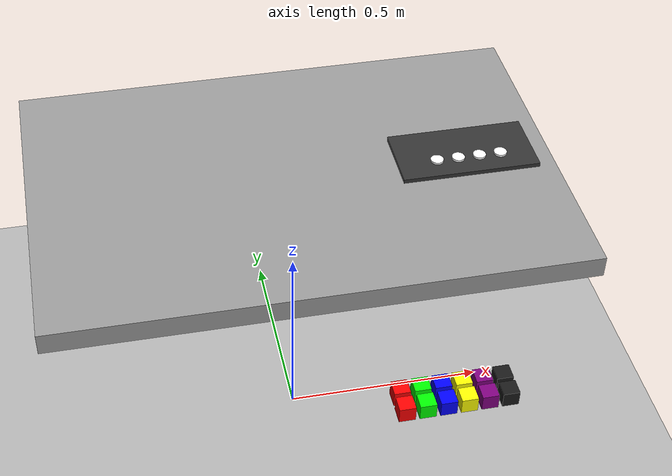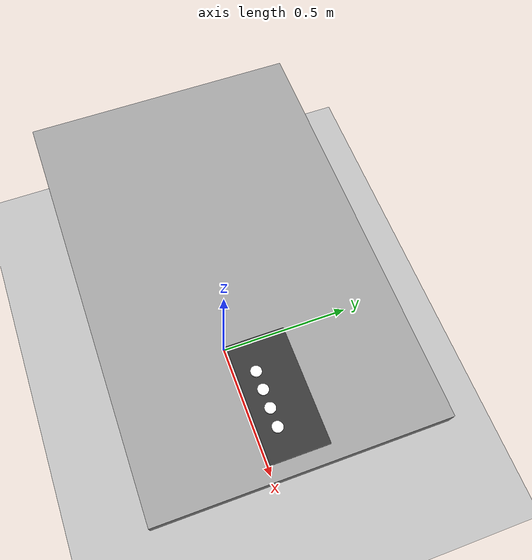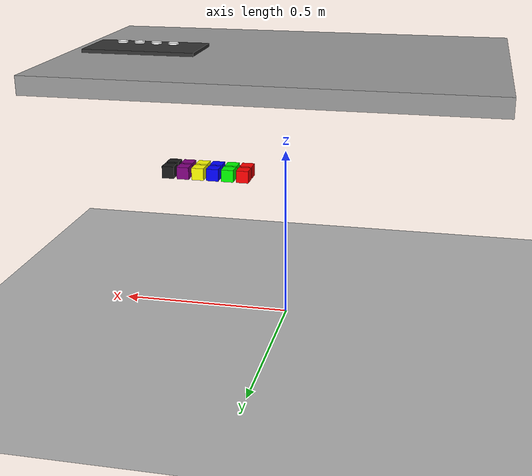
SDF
<sdf version="1.7">
 <world name="mastermind_world">
  <gravity>0 0 -9.81</gravity>
  <plugin filename="gz-sim-sensors-system" name="gz::sim::systems::Sensors">
   <render_engine>ogre2</render_engine>
  </plugin>
  <plugin filename="gz-sim-user-commands-system" name="gz::sim::systems::UserCommands"/>
  <plugin filename="gz-sim-scene-broadcaster-system" name="gz::sim::systems::SceneBroadcaster"/>
  <light name="sun" type="directional">
   <pose>0 0 100 0 0 0</pose>
   <diffuse>1 1 1 1</diffuse>
   <specular>0.1 0.1 0.1 1</specular>
   <direction>-0.5 0.5 -1</direction>
  </light>
  <model name="ground_plane">
   <static>true</static>
   <link name="link">
    <collision name="collision">
     <geometry><plane><normal>0 0 1</normal><size>10 10</size></plane></geometry>
    </collision>
    <visual name="visual">
     <geometry><plane><normal>0 0 1</normal><size>10 10</size></plane></geometry>
     <material><ambient>0.7 0.7 0.7 1</ambient></material>
    </visual>
   </link>
  </model>
  <include><uri>model://gameboard</uri><name>gameboard</name></include>
  <include><uri>model://cube</uri><name>cube</name></include>
 </world>
</sdf>

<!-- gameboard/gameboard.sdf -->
<sdf version="1.7">
  <model name="gameboard">
    <static>true</static>

    <!-- Main Table -->
    <link name="table_link">
      <pose>0 0 0 0 0 0</pose>
      <collision name="col">
        <geometry><box><size>1.2 0.8 0.05</size></box></geometry>
        <pose>0 0 0.75 0 0 0</pose>
      </collision>
      <visual name="visual">
        <geometry><box><size>1.2 0.8 0.05</size></box></geometry>
        <pose>0 0 0.75 0 0 0</pose>
        <material><ambient>0.6 0.6 0.6 1</ambient><diffuse>0.6 0.6 0.6 1</diffuse></material>
      </visual>
    </link>

    <!-- The Game Board Plate -->
    <link name="board_link">
      <pose>0.4 0.0 0.775 0 0 0</pose>
      <visual name="visual">
        <geometry><box><size>0.32 0.16 0.02</size></box></geometry>
        <material><ambient>0.2 0.2 0.2 1</ambient><diffuse>0.2 0.2 0.2 1</diffuse></material>
      </visual>
      <collision name="col">
        <geometry><box><size>0.32 0.16 0.02</size></box></geometry>
      </collision>
    </link>

    <!-- Small Trays / Decoding Wells -->
    <link name="well_1">
      <pose>0.33 -0.03 0.79 0 0 0</pose>
      <visual name="v"><geometry><cylinder><radius>0.015</radius><length>0.005</length></cylinder></geometry><material><ambient>1 1 1 1</ambient></material></visual>
    </link>
    <link name="well_2">
      <pose>0.38 -0.03 0.79 0 0 0</pose>
      <visual name="v"><geometry><cylinder><radius>0.015</radius><length>0.005</length></cylinder></geometry><material><ambient>1 1 1 1</ambient></material></visual>
    </link>
    <link name="well_3">
      <pose>0.43 -0.03 0.79 0 0 0</pose>
      <visual name="v"><geometry><cylinder><radius>0.015</radius><length>0.005</length></cylinder></geometry><material><ambient>1 1 1 1</ambient></material></visual>
    </link>
    <link name="well_4">
      <pose>0.48 -0.03 0.79 0 0 0</pose>
      <visual name="v"><geometry><cylinder><radius>0.015</radius><length>0.005</length></cylinder></geometry><material><ambient>1 1 1 1</ambient></material></visual>
    </link>
  </model>
</sdf>

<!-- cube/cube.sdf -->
<sdf version="1.7">
  <model name="cubes">
    <static>false</static>

    <link name="red_1">
      <pose>0.2 -0.3 0.32 0 0 0</pose>
      <inertial>
        <mass>0.02</mass>
        <inertia><ixx>5.33e-6</ixx><iyy>5.33e-6</iyy><izz>5.33e-6</izz><ixy>0</ixy><ixz>0</ixz><iyz>0</iyz></inertia>
      </inertial>
      <collision name="c"><geometry><box><size>0.04 0.04 0.04</size></box></geometry></collision>
      <visual name="v"><geometry><box><size>0.04 0.04 0.04</size></box></geometry><material><ambient>1 0 0 1</ambient><diffuse>1 0 0 1</diffuse></material></visual>
    </link>
    <link name="red_2">
      <pose>0.2 -0.35 0.32 0 0 0</pose>
      <inertial>
        <mass>0.02</mass>
        <inertia><ixx>5.33e-6</ixx><iyy>5.33e-6</iyy><izz>5.33e-6</izz><ixy>0</ixy><ixz>0</ixz><iyz>0</iyz></inertia>
      </inertial>
      <collision name="c"><geometry><box><size>0.04 0.04 0.04</size></box></geometry></collision>
      <visual name="v"><geometry><box><size>0.04 0.04 0.04</size></box></geometry><material><ambient>1 0 0 1</ambient><diffuse>1 0 0 1</diffuse></material></visual>
    </link>

    <link name="green_1">
      <pose>0.25 -0.3 0.32 0 0 0</pose>
      <inertial>
        <mass>0.02</mass>
        <inertia><ixx>5.33e-6</ixx><iyy>5.33e-6</iyy><izz>5.33e-6</izz><ixy>0</ixy><ixz>0</ixz><iyz>0</iyz></inertia>
      </inertial>
      <collision name="c"><geometry><box><size>0.04 0.04 0.04</size></box></geometry></collision>
      <visual name="v"><geometry><box><size>0.04 0.04 0.04</size></box></geometry><material><ambient>0 1 0 1</ambient><diffuse>0 1 0 1</diffuse></material></visual>
    </link>
    <link name="green_2">
      <pose>0.25 -0.35 0.32 0 0 0</pose>
      <inertial>
        <mass>0.02</mass>
        <inertia><ixx>5.33e-6</ixx><iyy>5.33e-6</iyy><izz>5.33e-6</izz><ixy>0</ixy><ixz>0</ixz><iyz>0</iyz></inertia>
      </inertial>
      <collision name="c"><geometry><box><size>0.04 0.04 0.04</size></box></geometry></collision>
      <visual name="v"><geometry><box><size>0.04 0.04 0.04</size></box></geometry><material><ambient>0 1 0 1</ambient><diffuse>0 1 0 1</diffuse></material></visual>
    </link>

    <link name="blue_1">
      <pose>0.3 -0.3 0.32 0 0 0</pose>
      <inertial>
        <mass>0.02</mass>
        <inertia><ixx>5.33e-6</ixx><iyy>5.33e-6</iyy><izz>5.33e-6</izz><ixy>0</ixy><ixz>0</ixz><iyz>0</iyz></inertia>
      </inertial>
      <collision name="c"><geometry><box><size>0.04 0.04 0.04</size></box></geometry></collision>
      <visual name="v"><geometry><box><size>0.04 0.04 0.04</size></box></geometry><material><ambient>0 0 1 1</ambient><diffuse>0 0 1 1</diffuse></material></visual>
    </link>
    <link name="blue_2">
      <pose>0.3 -0.35 0.32 0 0 0</pose>
      <inertial>
        <mass>0.02</mass>
        <inertia><ixx>5.33e-6</ixx><iyy>5.33e-6</iyy><izz>5.33e-6</izz><ixy>0</ixy><ixz>0</ixz><iyz>0</iyz></inertia>
      </inertial>
      <collision name="c"><geometry><box><size>0.04 0.04 0.04</size></box></geometry></collision>
      <visual name="v"><geometry><box><size>0.04 0.04 0.04</size></box></geometry><material><ambient>0 0 1 1</ambient><diffuse>0 0 1 1</diffuse></material></visual>
    </link>

    <link name="yellow_1">
      <pose>0.35 -0.3 0.32 0 0 0</pose>
      <inertial>
        <mass>0.02</mass>
        <inertia><ixx>5.33e-6</ixx><iyy>5.33e-6</iyy><izz>5.33e-6</izz><ixy>0</ixy><ixz>0</ixz><iyz>0</iyz></inertia>
      </inertial>
      <collision name="c"><geometry><box><size>0.04 0.04 0.04</size></box></geometry></collision>
      <visual name="v"><geometry><box><size>0.04 0.04 0.04</size></box></geometry><material><ambient>1 1 0 1</ambient><diffuse>1 1 0 1</diffuse></material></visual>
    </link>
    <link name="yellow_2">
      <pose>0.35 -0.35 0.32 0 0 0</pose>
      <inertial>
        <mass>0.02</mass>
        <inertia><ixx>5.33e-6</ixx><iyy>5.33e-6</iyy><izz>5.33e-6</izz><ixy>0</ixy><ixz>0</ixz><iyz>0</iyz></inertia>
      </inertial>
      <collision name="c"><geometry><box><size>0.04 0.04 0.04</size></box></geometry></collision>
      <visual name="v"><geometry><box><size>0.04 0.04 0.04</size></box></geometry><material><ambient>1 1 0 1</ambient><diffuse>1 1 0 1</diffuse></material></visual>
    </link>

    <link name="purple_1">
      <pose>0.4 -0.3 0.32 0 0 0</pose>
      <inertial>
        <mass>0.02</mass>
        <inertia><ixx>5.33e-6</ixx><iyy>5.33e-6</iyy><izz>5.33e-6</izz><ixy>0</ixy><ixz>0</ixz><iyz>0</iyz></inertia>
      </inertial>
      <collision name="c"><geometry><box><size>0.04 0.04 0.04</size></box></geometry></collision>
      <visual name="v"><geometry><box><size>0.04 0.04 0.04</size></box></geometry><material><ambient>0.5 0 0.5 1</ambient><diffuse>0.5 0 0.5 1</diffuse></material></visual>
    </link>
    <link name="purple_2">
      <pose>0.4 -0.35 0.32 0 0 0</pose>
      <inertial>
        <mass>0.02</mass>
        <inertia><ixx>5.33e-6</ixx><iyy>5.33e-6</iyy><izz>5.33e-6</izz><ixy>0</ixy><ixz>0</ixz><iyz>0</iyz></inertia>
      </inertial>
      <collision name="c"><geometry><box><size>0.04 0.04 0.04</size></box></geometry></collision>
      <visual name="v"><geometry><box><size>0.04 0.04 0.04</size></box></geometry><material><ambient>0.5 0 0.5 1</ambient><diffuse>0.5 0 0.5 1</diffuse></material></visual>
    </link>

    <link name="black_1">
      <pose>0.45 -0.3 0.32 0 0 0</pose>
      <inertial>
        <mass>0.02</mass>
        <inertia><ixx>5.33e-6</ixx><iyy>5.33e-6</iyy><izz>5.33e-6</izz><ixy>0</ixy><ixz>0</ixz><iyz>0</iyz></inertia>
      </inertial>
      <collision name="c"><geometry><box><size>0.04 0.04 0.04</size></box></geometry></collision>
      <visual name="v"><geometry><box><size>0.04 0.04 0.04</size></box></geometry><material><ambient>0.1 0.1 0.1 1</ambient><diffuse>0.1 0.1 0.1 1</diffuse></material></visual>
    </link>
    <link name="black_2">
      <pose>0.45 -0.35 0.32 0 0 0</pose>
      <inertial>
        <mass>0.02</mass>
        <inertia><ixx>5.33e-6</ixx><iyy>5.33e-6</iyy><izz>5.33e-6</izz><ixy>0</ixy><ixz>0</ixz><iyz>0</iyz></inertia>
      </inertial>
      <collision name="c"><geometry><box><size>0.04 0.04 0.04</size></box></geometry></collision>
      <visual name="v"><geometry><box><size>0.04 0.04 0.04</size></box></geometry><material><ambient>0.1 0.1 0.1 1</ambient><diffuse>0.1 0.1 0.1 1</diffuse></material></visual>
    </link>
  </model>
</sdf>
